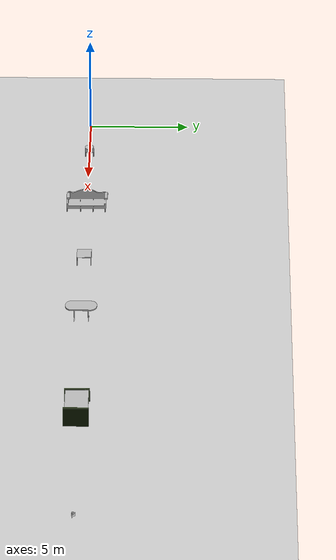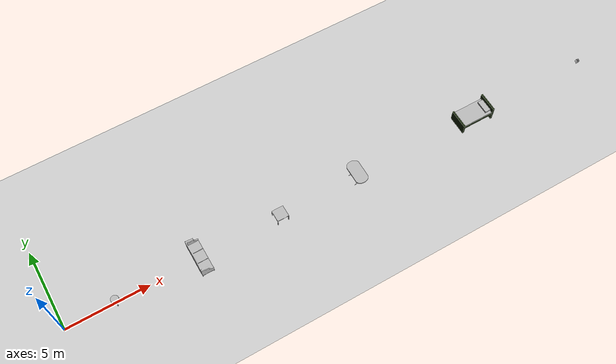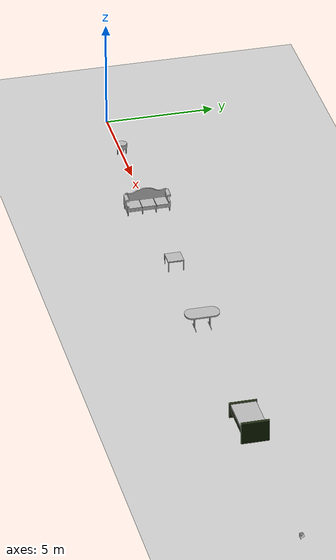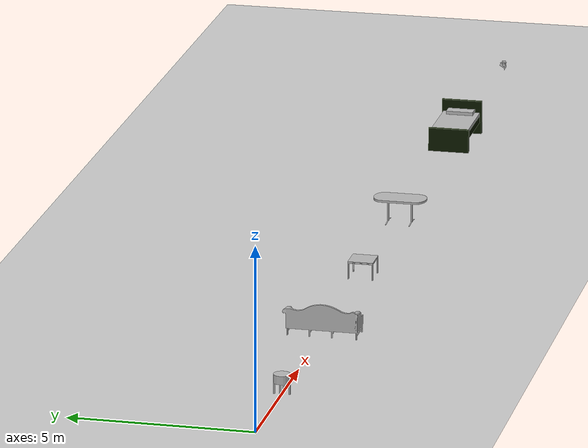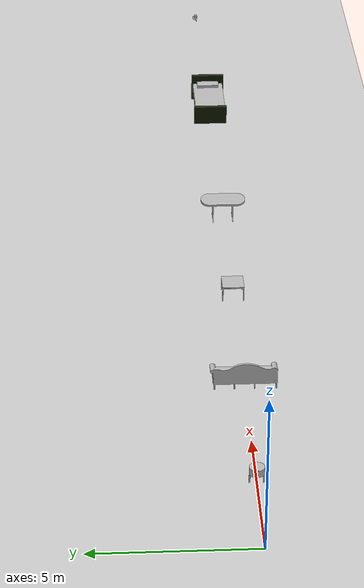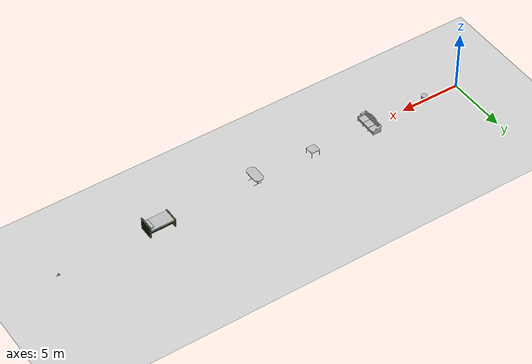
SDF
<sdf version="1.5">
 <world name="myworld">
  <include><uri>model://sun</uri></include>
  <include><uri>model://ground_plane</uri></include>
  <include><uri>model://hri_roundtable</uri><pose>3 0 0 0 0 0</pose></include>
  <include><uri>model://hri_couch</uri><pose>8 0 0 0 0 0</pose></include>
  <include><uri>model://hri_coffeetable</uri><pose>13 0 0 0 0 0</pose></include>
  <include><uri>model://hri_dinnertable</uri><pose>18 0 0 0 0 0</pose></include>
  <include><uri>model://hri_bed</uri><pose>26 0 0 0 0 0</pose></include>
  <include><uri>model://hri_obj_fork</uri><pose>34 0 0 0 0 0</pose></include>
  <include><uri>model://hri_obj_glassescase</uri><pose>34 0 0 0 0 0</pose></include>
  <include><uri>model://hri_obj_laptop</uri><pose>34 0 0 0 0 0</pose></include>
  <include><uri>model://hri_obj_monitor</uri><pose>34 0 0 0 0 0</pose></include>
  <include><uri>model://hri_obj_mug</uri><pose>34 0 0 0 0 0</pose></include>
  <include><uri>model://hri_obj_statue</uri><pose>34 0 0 0 0 0</pose></include>
 </world>
</sdf>

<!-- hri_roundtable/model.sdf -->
<sdf version="1.4">
<model name="round table">
  <pose>0 0 0 0 0 0</pose>
  <static>true</static>
    <link name="link">
      <pose>0 0 0 0 0 0</pose>
      <inertial>
        <mass>1.0</mass>
        <inertia> <!-- interias are tricky to compute -->
          <!-- http://answers.gazebosim.org/question/4372/the-inertia-matrix-explained/ -->
          <ixx>0.083</ixx>       <!-- for a box: ixx = 0.083 * mass * (y*y + z*z) -->
          <ixy>0.0</ixy>         <!-- for a box: ixy = 0 -->
          <ixz>0.0</ixz>         <!-- for a box: ixz = 0 -->
          <iyy>0.083</iyy>       <!-- for a box: iyy = 0.083 * mass * (x*x + z*z) -->
          <iyz>0.0</iyz>         <!-- for a box: iyz = 0 -->
          <izz>0.083</izz>       <!-- for a box: izz = 0.083 * mass * (x*x + y*y) -->
        </inertia>
      </inertial>
      <collision name="collision">
	<pose>0 0 0 1.5708 0 0</pose>
        <geometry>
	  <mesh>
	    <uri>model://hri_roundtable/meshes/roundtable.dae</uri>
	    <scale>1 1 1</scale>
	  </mesh>
        </geometry>
      </collision>
      <visual name="visual">
	<pose>0 0 0 1.5708 0 0</pose>
        <geometry>
	  <mesh>
	    <uri>model://hri_roundtable/meshes/roundtable.dae</uri>
	    <scale>1 1 1</scale>
	  </mesh>
        </geometry>
      </visual>
    </link>
  </model>
</sdf>

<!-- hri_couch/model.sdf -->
<sdf version="1.4">
<model name="couch">
  <pose>0 0 0 0 0 0</pose>
  <static>true</static>
    <link name="link">
      <pose>0 0 0 0 0 0</pose>
      <inertial>
        <mass>1.0</mass>
        <inertia> <!-- interias are tricky to compute -->
          <!-- http://answers.gazebosim.org/question/4372/the-inertia-matrix-explained/ -->
          <ixx>0.083</ixx>       <!-- for a box: ixx = 0.083 * mass * (y*y + z*z) -->
          <ixy>0.0</ixy>         <!-- for a box: ixy = 0 -->
          <ixz>0.0</ixz>         <!-- for a box: ixz = 0 -->
          <iyy>0.083</iyy>       <!-- for a box: iyy = 0.083 * mass * (x*x + z*z) -->
          <iyz>0.0</iyz>         <!-- for a box: iyz = 0 -->
          <izz>0.083</izz>       <!-- for a box: izz = 0.083 * mass * (x*x + y*y) -->
        </inertia>
      </inertial>
      <collision name="collision">
	<pose>0 0 0 1.5708 0 0</pose>
        <geometry>
	  <mesh>
	    <uri>model://hri_couch/meshes/couch.dae</uri>
	    <scale>1 1 1</scale>
	  </mesh>
        </geometry>
      </collision>
      <visual name="visual">
	<pose>0 0 0 1.5708 0 0</pose>
        <geometry>
	  <mesh>
	    <uri>model://hri_couch/meshes/couch.dae</uri>
	    <scale>1 1 1</scale>
	  </mesh>
        </geometry>
      </visual>
    </link>
  </model>
</sdf>

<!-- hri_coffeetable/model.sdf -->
<sdf version="1.4">
<model name="coffee table">
  <pose>0 0 0 0 0 0</pose>
  <static>true</static>
    <link name="link">
      <pose>0 0 0 0 0 0</pose>
      <inertial>
        <mass>1.0</mass>
        <inertia> <!-- interias are tricky to compute -->
          <!-- http://answers.gazebosim.org/question/4372/the-inertia-matrix-explained/ -->
          <ixx>0.083</ixx>       <!-- for a box: ixx = 0.083 * mass * (y*y + z*z) -->
          <ixy>0.0</ixy>         <!-- for a box: ixy = 0 -->
          <ixz>0.0</ixz>         <!-- for a box: ixz = 0 -->
          <iyy>0.083</iyy>       <!-- for a box: iyy = 0.083 * mass * (x*x + z*z) -->
          <iyz>0.0</iyz>         <!-- for a box: iyz = 0 -->
          <izz>0.083</izz>       <!-- for a box: izz = 0.083 * mass * (x*x + y*y) -->
        </inertia>
      </inertial>
      <collision name="collision">
	<pose>0 0 0 1.5708 0 0</pose>
        <geometry>
	  <mesh>
	    <uri>model://hri_coffeetable/meshes/coffeetable.dae</uri>
	    <scale>1 1 1</scale>
	  </mesh>
        </geometry>
      </collision>
      <visual name="visual">
	<pose>0 0 0 1.5708 0 0</pose>
        <geometry>
	  <mesh>
	    <uri>model://hri_coffeetable/meshes/coffeetable.dae</uri>
	    <scale>1 1 1</scale>
	  </mesh>
        </geometry>
      </visual>
    </link>
  </model>
</sdf>

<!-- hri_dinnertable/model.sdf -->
<sdf version="1.4">
<model name="dinner table">
  <pose>0 0 0 0 0 0</pose>
  <static>true</static>
    <link name="link">
      <pose>0 0 0 0 0 0</pose>
      <inertial>
        <mass>1.0</mass>
        <inertia> <!-- interias are tricky to compute -->
          <!-- http://answers.gazebosim.org/question/4372/the-inertia-matrix-explained/ -->
          <ixx>0.083</ixx>       <!-- for a box: ixx = 0.083 * mass * (y*y + z*z) -->
          <ixy>0.0</ixy>         <!-- for a box: ixy = 0 -->
          <ixz>0.0</ixz>         <!-- for a box: ixz = 0 -->
          <iyy>0.083</iyy>       <!-- for a box: iyy = 0.083 * mass * (x*x + z*z) -->
          <iyz>0.0</iyz>         <!-- for a box: iyz = 0 -->
          <izz>0.083</izz>       <!-- for a box: izz = 0.083 * mass * (x*x + y*y) -->
        </inertia>
      </inertial>
      <collision name="collision">
	<pose>0 0 0 1.5708 0 0</pose>
        <geometry>
	  <mesh>
	    <uri>model://hri_dinnertable/meshes/dinnertable.dae</uri>
	    <scale>1 1 1</scale>
	  </mesh>
        </geometry>
      </collision>
      <visual name="visual">
	<pose>0 0 0 1.5708 0 0</pose>
        <geometry>
	  <mesh>
	    <uri>model://hri_dinnertable/meshes/dinnertable.dae</uri>
	    <scale>1 1 1</scale>
	  </mesh>
        </geometry>
      </visual>
    </link>
  </model>
</sdf>

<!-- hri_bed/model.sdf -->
<sdf version="1.5">
<model name="bed">
  <static>true</static>
    <link name="link">
      <pose>0 0 0.6 0 0 0</pose>
      <inertial>
        <mass>1.0</mass>
        <inertia> <!-- interias are tricky to compute -->
          <!-- http://answers.gazebosim.org/question/4372/the-inertia-matrix-explained/ -->
          <ixx>0.083</ixx>       <!-- for a box: ixx = 0.083 * mass * (y*y + z*z) -->
          <ixy>0.0</ixy>         <!-- for a box: ixy = 0 -->
          <ixz>0.0</ixz>         <!-- for a box: ixz = 0 -->
          <iyy>0.083</iyy>       <!-- for a box: iyy = 0.083 * mass * (x*x + z*z) -->
          <iyz>0.0</iyz>         <!-- for a box: iyz = 0 -->
          <izz>0.083</izz>       <!-- for a box: izz = 0.083 * mass * (x*x + y*y) -->
        </inertia>
      </inertial>
      <collision name="collision">
        <geometry>
          <box>
            <size>2.0    1.1    0.10</size>
          </box>
        </geometry>
      </collision>
      <visual name="visual">
        <geometry>
          <box>
            <size>2.0    1.1    0.10</size>
          </box>
        </geometry>
      </visual>
    </link>

    <link name="link2">
      <pose>0 0 0.45 0 0 0</pose>
      <inertial>
        <mass>1.0</mass>
        <inertia> <!-- interias are tricky to compute -->
          <!-- http://answers.gazebosim.org/question/4372/the-inertia-matrix-explained/ -->
          <ixx>0.083</ixx>       <!-- for a box: ixx = 0.083 * mass * (y*y + z*z) -->
          <ixy>0.0</ixy>         <!-- for a box: ixy = 0 -->
          <ixz>0.0</ixz>         <!-- for a box: ixz = 0 -->
          <iyy>0.083</iyy>       <!-- for a box: iyy = 0.083 * mass * (x*x + z*z) -->
          <iyz>0.0</iyz>         <!-- for a box: iyz = 0 -->
          <izz>0.083</izz>       <!-- for a box: izz = 0.083 * mass * (x*x + y*y) -->
        </inertia>
      </inertial>
      <collision name="collision">
        <geometry>
          <box>
            <size>2.0    1.1    0.20</size>
          </box>
        </geometry>
      </collision>
      <visual name="visual">
        <geometry>
          <box>
            <size>2.0    1.1    0.20</size>
          </box>
        </geometry>
	<material>
	  <ambient>0.25 0 0 1</ambient>
	  <diffuse>0.05 0.1 0 1</diffuse>
	  <specular>0.1 0.1 0.1 1</specular>
	  <emissive>0 0 0 0</emissive>
	</material>
      </visual>
    </link>

    <link name="link3">
      <pose>1 0 0.5 0 0 0</pose>
      <inertial>
        <mass>1.0</mass>
        <inertia> <!-- interias are tricky to compute -->
          <!-- http://answers.gazebosim.org/question/4372/the-inertia-matrix-explained/ -->
          <ixx>0.083</ixx>       <!-- for a box: ixx = 0.083 * mass * (y*y + z*z) -->
          <ixy>0.0</ixy>         <!-- for a box: ixy = 0 -->
          <ixz>0.0</ixz>         <!-- for a box: ixz = 0 -->
          <iyy>0.083</iyy>       <!-- for a box: iyy = 0.083 * mass * (x*x + z*z) -->
          <iyz>0.0</iyz>         <!-- for a box: iyz = 0 -->
          <izz>0.083</izz>       <!-- for a box: izz = 0.083 * mass * (x*x + y*y) -->
        </inertia>
      </inertial>
      <collision name="collision">
        <geometry>
          <box>
            <size>0.1    1.2    1.0</size>
          </box>
        </geometry>
      </collision>
      <visual name="visual">
        <geometry>
          <box>
            <size>0.1    1.2    1.0</size>
          </box>
        </geometry>
	<material>
	  <ambient>0.25 0 0 1</ambient>
	  <diffuse>0.05 0.1 0 1</diffuse>
	  <specular>0.1 0.1 0.1 1</specular>
	  <emissive>0 0 0 0</emissive>
	</material>
      </visual>
    </link>

    <link name="link4">
      <pose>-1 0 0.35 0 0 0</pose>
      <inertial>
        <mass>1.0</mass>
        <inertia> <!-- interias are tricky to compute -->
          <!-- http://answers.gazebosim.org/question/4372/the-inertia-matrix-explained/ -->
          <ixx>0.083</ixx>       <!-- for a box: ixx = 0.083 * mass * (y*y + z*z) -->
          <ixy>0.0</ixy>         <!-- for a box: ixy = 0 -->
          <ixz>0.0</ixz>         <!-- for a box: ixz = 0 -->
          <iyy>0.083</iyy>       <!-- for a box: iyy = 0.083 * mass * (x*x + z*z) -->
          <iyz>0.0</iyz>         <!-- for a box: iyz = 0 -->
          <izz>0.083</izz>       <!-- for a box: izz = 0.083 * mass * (x*x + y*y) -->
        </inertia>
      </inertial>
      <collision name="collision">
        <geometry>
          <box>
            <size>0.1    1.2    0.70</size>
          </box>
        </geometry>
      </collision>
      <visual name="visual">
        <geometry>
          <box>
            <size>0.1    1.2    0.70</size>
          </box>
        </geometry>
	<material>
	  <ambient>0.25 0 0 1</ambient>
	  <diffuse>0.05 0.1 0 1</diffuse>
	  <specular>0.1 0.1 0.1 1</specular>
	  <emissive>0 0 0 0</emissive>
	</material>
      </visual>
    </link>

    <link name="link5">
      <pose>0.80 0 0.7 0 0 0</pose>
      <inertial>
        <mass>1.0</mass>
        <inertia> <!-- interias are tricky to compute -->
          <!-- http://answers.gazebosim.org/question/4372/the-inertia-matrix-explained/ -->
          <ixx>0.083</ixx>       <!-- for a box: ixx = 0.083 * mass * (y*y + z*z) -->
          <ixy>0.0</ixy>         <!-- for a box: ixy = 0 -->
          <ixz>0.0</ixz>         <!-- for a box: ixz = 0 -->
          <iyy>0.083</iyy>       <!-- for a box: iyy = 0.083 * mass * (x*x + z*z) -->
          <iyz>0.0</iyz>         <!-- for a box: iyz = 0 -->
          <izz>0.083</izz>       <!-- for a box: izz = 0.083 * mass * (x*x + y*y) -->
        </inertia>
      </inertial>
      <collision name="collision">
        <geometry>
          <box>
            <size>0.4    0.8    0.10</size>
          </box>
        </geometry>
      </collision>
      <visual name="visual">
        <geometry>
          <box>
            <size>0.4    0.8    0.10</size>
          </box>
        </geometry>
      </visual>
    </link>

  </model>
</sdf>

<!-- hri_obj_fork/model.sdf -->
<sdf version="1.5">
  <model name="hri_obj_fork">
    <link name="link">
      <pose>0 0 0.15 0 0 0</pose>
      <inertial>
        <mass>0.0599</mass>
        <inertia>
          <ixx>0.0003028961527030333</ixx>
          <ixy>0</ixy>
          <ixz>0</ixz>
          <iyy>0.0003028961527030333</iyy>
          <iyz>0</iyz>
          <izz>3.2876352372798436e-05</izz>
        </inertia>
      </inertial>

      <collision name="collision">
        <geometry>
          <mesh>
            <uri>model://hri_obj_fork/meshes/fork.dae</uri>
          </mesh>
        </geometry>
        <surface>
          <contact>
            <!-- typical acrylic plastic material properties -->
            <poissons_ratio>0.35</poissons_ratio>
            <elastic_modulus>3.102640776e+09</elastic_modulus>
            <ode>
              <kp>100000</kp>
              <kd>100</kd>
              <max_vel>100.0</max_vel>
              <min_depth>0.001</min_depth>
            </ode>
          </contact>
          <friction>
            <torsional>
              <coefficient>1.0</coefficient>
              <use_patch_radius>0</use_patch_radius>
              <surface_radius>0.01</surface_radius>
            </torsional>
          </friction>
        </surface>
      </collision>

      <visual name="visual">
        <geometry>
          <mesh>
            <uri>model://hri_obj_fork/meshes/fork.dae</uri>
          </mesh>
        </geometry>
        <material>
          <script>
            <uri>file://media/materials/scripts/gazebo.material</uri>
            <name>Gazebo/GreyTransparent</name>
          </script>
        </material>
      </visual>

    </link>
  </model>
</sdf>

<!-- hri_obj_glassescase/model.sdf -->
<sdf version="1.5">
  <model name="hri_obj_glassescase">
    <link name="link">
      <pose>0 0 0.065 0 0 0</pose>
      <inertial>
        <mass>0.0599</mass>
        <inertia>
          <ixx>0.0003028961527030333</ixx>
          <ixy>0</ixy>
          <ixz>0</ixz>
          <iyy>0.0003028961527030333</iyy>
          <iyz>0</iyz>
          <izz>3.2876352372798436e-05</izz>
        </inertia>
      </inertial>

      <collision name="collision">
        <geometry>
          <mesh>
            <uri>model://hri_obj_glassescase/meshes/glassescase.dae</uri>
          </mesh>
        </geometry>
        <surface>
          <contact>
            <!-- typical acrylic plastic material properties -->
            <poissons_ratio>0.35</poissons_ratio>
            <elastic_modulus>3.102640776e+09</elastic_modulus>
            <ode>
              <kp>100000</kp>
              <kd>100</kd>
              <max_vel>100.0</max_vel>
              <min_depth>0.001</min_depth>
            </ode>
          </contact>
          <friction>
            <torsional>
              <coefficient>1.0</coefficient>
              <use_patch_radius>0</use_patch_radius>
              <surface_radius>0.01</surface_radius>
            </torsional>
          </friction>
        </surface>
      </collision>

      <visual name="visual">
        <geometry>
          <mesh>
            <uri>model://hri_obj_glassescase/meshes/glassescase.dae</uri>
          </mesh>
        </geometry>
        <material>
          <script>
            <uri>file://media/materials/scripts/gazebo.material</uri>
            <name>Gazebo/GreyTransparent</name>
          </script>
        </material>
      </visual>

    </link>
  </model>
</sdf>

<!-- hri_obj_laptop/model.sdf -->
<sdf version="1.5">
  <model name="hri_obj_laptop">
    <link name="link">
      <pose>0 0 0 0 0 0</pose>
      <inertial>
        <mass>0.0599</mass>
        <inertia>
          <ixx>0.0003028961527030333</ixx>
          <ixy>0</ixy>
          <ixz>0</ixz>
          <iyy>0.0003028961527030333</iyy>
          <iyz>0</iyz>
          <izz>3.2876352372798436e-05</izz>
        </inertia>
      </inertial>

      <collision name="collision">
        <geometry>
          <mesh>
            <uri>model://hri_obj_laptop/meshes/laptop.dae</uri>
          </mesh>
        </geometry>
        <surface>
          <contact>
            <!-- typical acrylic plastic material properties -->
            <poissons_ratio>0.35</poissons_ratio>
            <elastic_modulus>3.102640776e+09</elastic_modulus>
            <ode>
              <kp>100000</kp>
              <kd>100</kd>
              <max_vel>100.0</max_vel>
              <min_depth>0.001</min_depth>
            </ode>
          </contact>
          <friction>
            <torsional>
              <coefficient>1.0</coefficient>
              <use_patch_radius>0</use_patch_radius>
              <surface_radius>0.01</surface_radius>
            </torsional>
          </friction>
        </surface>
      </collision>

      <visual name="visual">
        <geometry>
          <mesh>
            <uri>model://hri_obj_laptop/meshes/laptop.dae</uri>
          </mesh>
        </geometry>
        <material>
          <script>
            <uri>file://media/materials/scripts/gazebo.material</uri>
            <name>Gazebo/GreyTransparent</name>
          </script>
        </material>
      </visual>

    </link>
  </model>
</sdf>

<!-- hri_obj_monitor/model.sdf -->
<sdf version="1.5">
  <model name="hri_obj_monitor">
    <link name="link">
      <pose>0 0 0.15 0 0 0</pose>
      <inertial>
        <mass>0.0599</mass>
        <inertia>
          <ixx>0.0003028961527030333</ixx>
          <ixy>0</ixy>
          <ixz>0</ixz>
          <iyy>0.0003028961527030333</iyy>
          <iyz>0</iyz>
          <izz>3.2876352372798436e-05</izz>
        </inertia>
      </inertial>

      <collision name="collision">
        <geometry>
          <mesh>
            <uri>model://hri_obj_monitor/meshes/monitor.dae</uri>
          </mesh>
        </geometry>
        <surface>
          <contact>
            <!-- typical acrylic plastic material properties -->
            <poissons_ratio>0.35</poissons_ratio>
            <elastic_modulus>3.102640776e+09</elastic_modulus>
            <ode>
              <kp>100000</kp>
              <kd>100</kd>
              <max_vel>100.0</max_vel>
              <min_depth>0.001</min_depth>
            </ode>
          </contact>
          <friction>
            <torsional>
              <coefficient>1.0</coefficient>
              <use_patch_radius>0</use_patch_radius>
              <surface_radius>0.01</surface_radius>
            </torsional>
          </friction>
        </surface>
      </collision>

      <visual name="visual">
        <geometry>
          <mesh>
            <uri>model://hri_obj_monitor/meshes/monitor.dae</uri>
          </mesh>
        </geometry>
        <material>
          <script>
            <uri>file://media/materials/scripts/gazebo.material</uri>
            <name>Gazebo/GreyTransparent</name>
          </script>
        </material>
      </visual>

    </link>
  </model>
</sdf>

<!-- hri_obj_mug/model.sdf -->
<sdf version="1.5">
  <model name="hri_obj_mug">
    <link name="link">
      <pose>0 0 0.065 0 0 0</pose>
      <inertial>
        <mass>0.0599</mass>
        <inertia>
          <ixx>0.0003028961527030333</ixx>
          <ixy>0</ixy>
          <ixz>0</ixz>
          <iyy>0.0003028961527030333</iyy>
          <iyz>0</iyz>
          <izz>3.2876352372798436e-05</izz>
        </inertia>
      </inertial>

      <collision name="collision">
        <geometry>
          <mesh>
            <uri>model://hri_obj_mug/meshes/mug.dae</uri>
          </mesh>
        </geometry>
        <surface>
          <contact>
            <!-- typical acrylic plastic material properties -->
            <poissons_ratio>0.35</poissons_ratio>
            <elastic_modulus>3.102640776e+09</elastic_modulus>
            <ode>
              <kp>100000</kp>
              <kd>100</kd>
              <max_vel>100.0</max_vel>
              <min_depth>0.001</min_depth>
            </ode>
          </contact>
          <friction>
            <torsional>
              <coefficient>1.0</coefficient>
              <use_patch_radius>0</use_patch_radius>
              <surface_radius>0.01</surface_radius>
            </torsional>
          </friction>
        </surface>
      </collision>

      <visual name="visual">
        <geometry>
          <mesh>
            <uri>model://hri_obj_mug/meshes/mug.dae</uri>
          </mesh>
        </geometry>
        <material>
          <script>
            <uri>file://media/materials/scripts/gazebo.material</uri>
            <name>Gazebo/GreyTransparent</name>
          </script>
        </material>
      </visual>

    </link>
  </model>
</sdf>

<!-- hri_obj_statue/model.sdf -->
<sdf version="1.5">
  <model name="hri_obj_statue">
    <link name="link">
      <pose>0 0 0.15 0 0 0</pose>
      <inertial>
        <mass>0.0599</mass>
        <inertia>
          <ixx>0.0003028961527030333</ixx>
          <ixy>0</ixy>
          <ixz>0</ixz>
          <iyy>0.0003028961527030333</iyy>
          <iyz>0</iyz>
          <izz>3.2876352372798436e-05</izz>
        </inertia>
      </inertial>

      <collision name="collision">
        <geometry>
          <mesh>
            <uri>model://hri_obj_statue/meshes/statue.dae</uri>
          </mesh>
        </geometry>
        <surface>
          <contact>
            <!-- typical acrylic plastic material properties -->
            <poissons_ratio>0.35</poissons_ratio>
            <elastic_modulus>3.102640776e+09</elastic_modulus>
            <ode>
              <kp>100000</kp>
              <kd>100</kd>
              <max_vel>100.0</max_vel>
              <min_depth>0.001</min_depth>
            </ode>
          </contact>
          <friction>
            <torsional>
              <coefficient>1.0</coefficient>
              <use_patch_radius>0</use_patch_radius>
              <surface_radius>0.01</surface_radius>
            </torsional>
          </friction>
        </surface>
      </collision>

      <visual name="visual">
        <geometry>
          <mesh>
            <uri>model://hri_obj_statue/meshes/statue.dae</uri>
          </mesh>
        </geometry>
        <material>
          <script>
            <uri>file://media/materials/scripts/gazebo.material</uri>
            <name>Gazebo/GreyTransparent</name>
          </script>
        </material>
      </visual>

    </link>
  </model>
</sdf>
